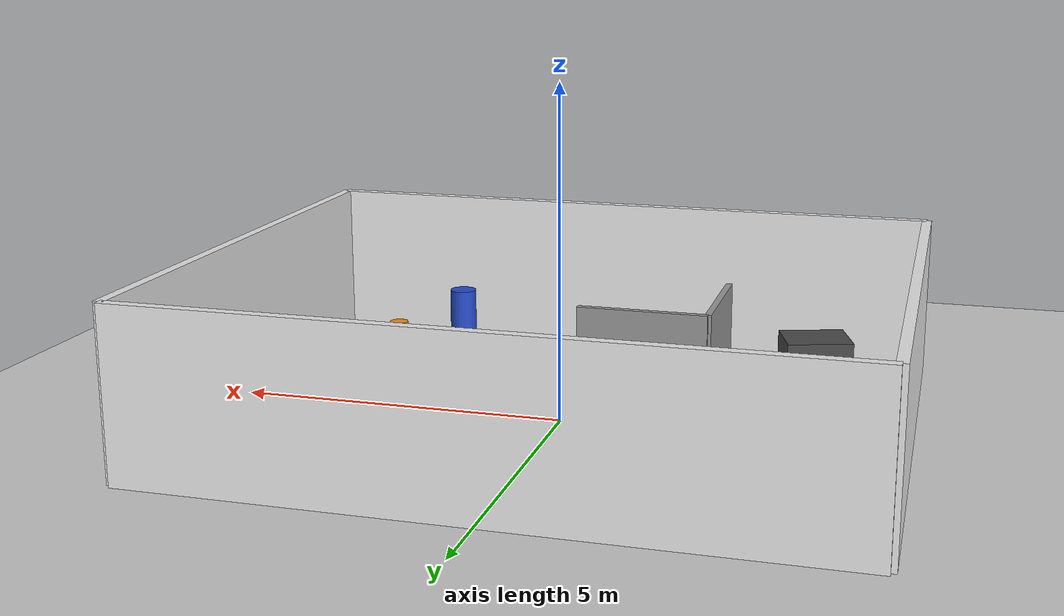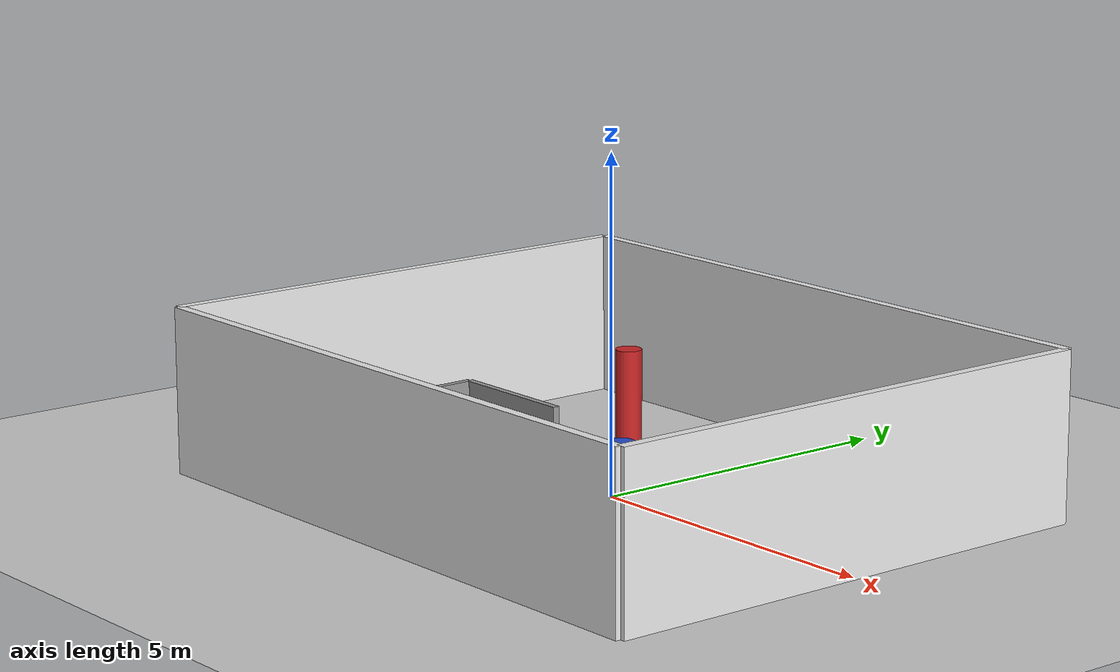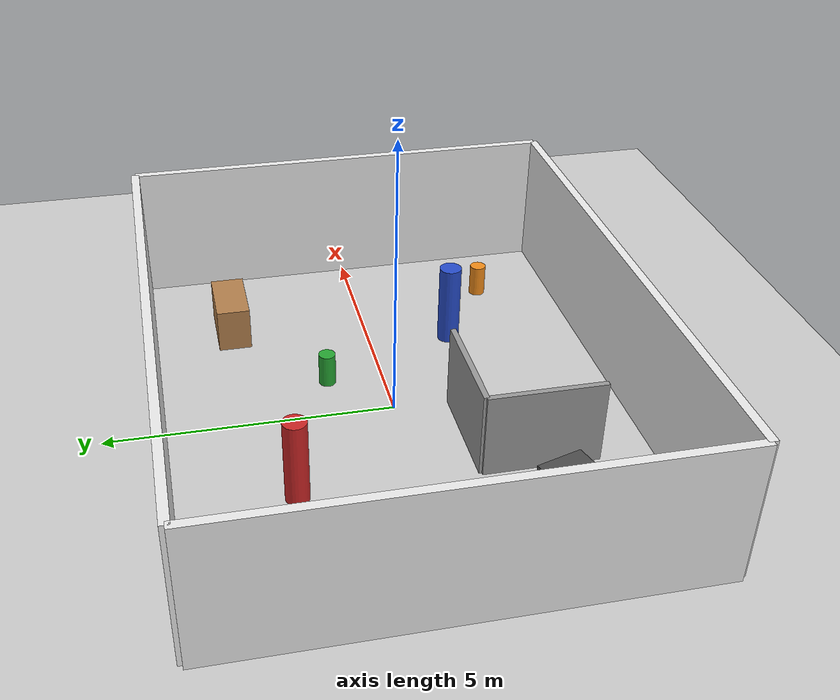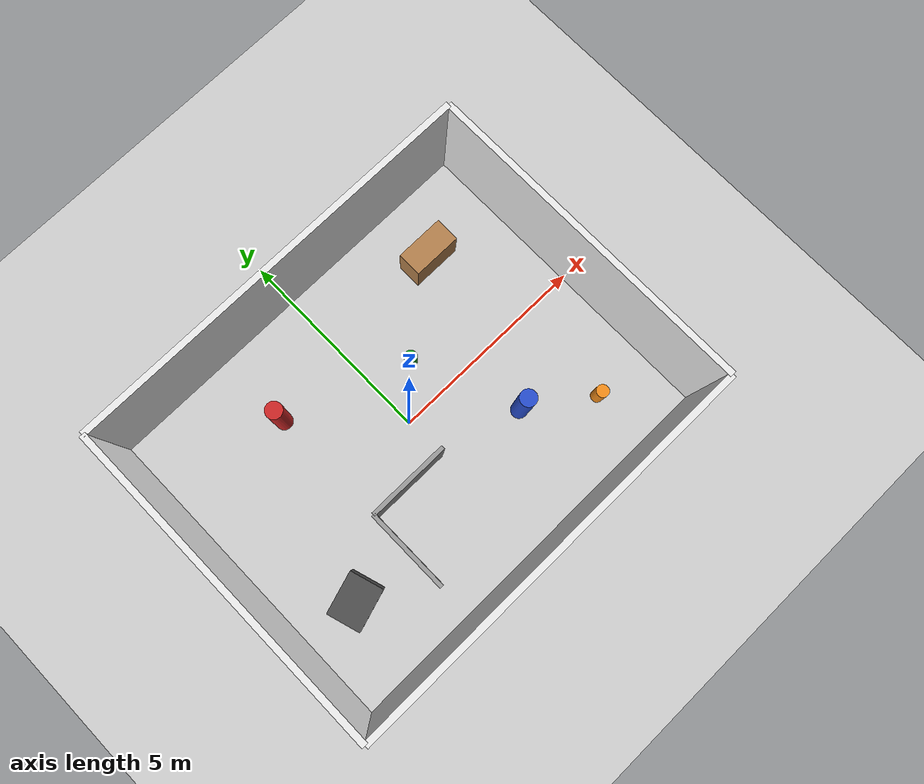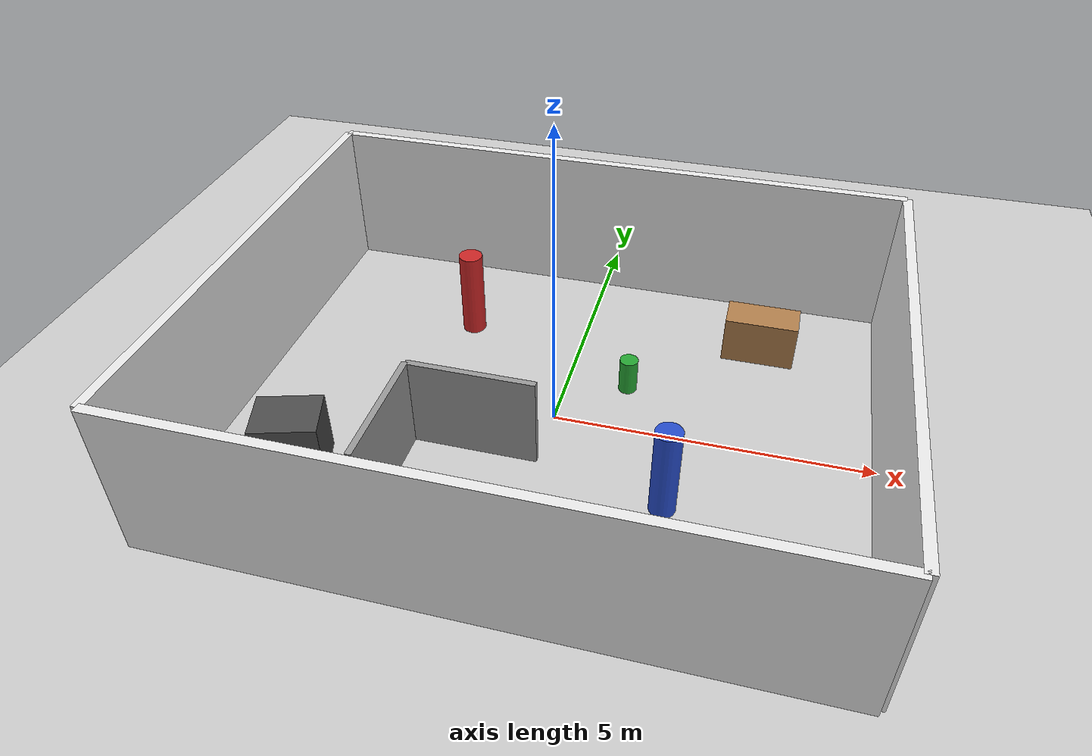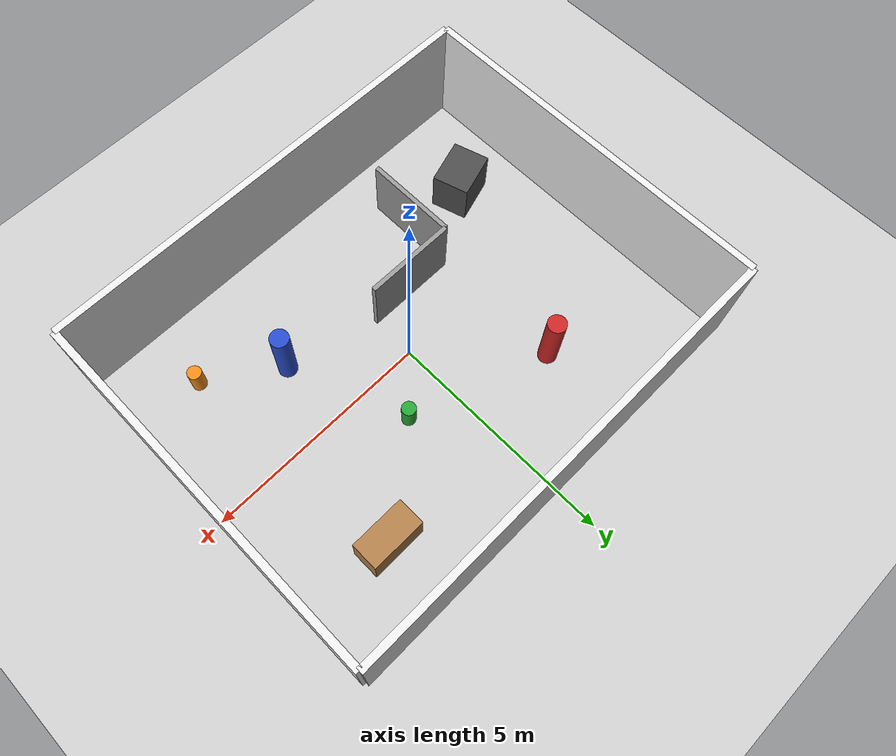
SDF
<sdf version='1.6'>
  <world name='default'>
    <light name='sun' type='directional'>
      <cast_shadows>1</cast_shadows>
      <pose frame=''>0 0 10 0 -0 0</pose>
      <diffuse>0.8 0.8 0.8 1</diffuse>
      <specular>0.1 0.1 0.1 1</specular>
      <attenuation>
        <range>1000</range>
        <constant>0.9</constant>
        <linear>0.01</linear>
        <quadratic>0.001</quadratic>
      </attenuation>
      <direction>-0.5 0.5 -1</direction>
    </light>

    <!-- Ground plane -->
    <model name='ground_plane'>
      <static>1</static>
      <link name='link'>
        <collision name='collision'>
          <geometry>
            <plane>
              <normal>0 0 1</normal>
              <size>100 100</size>
            </plane>
          </geometry>
          <surface>
            <friction>
              <ode>
                <mu>100</mu>
                <mu2>50</mu2>
              </ode>
            </friction>
          </surface>
        </collision>
        <visual name='visual'>
          <cast_shadows>0</cast_shadows>
          <geometry>
            <plane>
              <normal>0 0 1</normal>
              <size>100 100</size>
            </plane>
          </geometry>
          <material>
            <script>
              <uri>file://media/materials/scripts/gazebo.material</uri>
              <name>Gazebo/Grey</name>
            </script>
          </material>
        </visual>
      </link>
    </model>

    <!-- ===== Room: 10m x 8m, walls 2.5m high ===== -->

    <!-- Wall North (along X, at Y=4) -->
    <model name='wall_north'>
      <static>1</static>
      <pose>0 4 1.25 0 0 0</pose>
      <link name='link'>
        <collision name='collision'>
          <geometry><box><size>10 0.15 2.5</size></box></geometry>
        </collision>
        <visual name='visual'>
          <geometry><box><size>10 0.15 2.5</size></box></geometry>
          <material><script><uri>file://media/materials/scripts/gazebo.material</uri><name>Gazebo/White</name></script></material>
        </visual>
      </link>
    </model>

    <!-- Wall South (along X, at Y=-4) -->
    <model name='wall_south'>
      <static>1</static>
      <pose>0 -4 1.25 0 0 0</pose>
      <link name='link'>
        <collision name='collision'>
          <geometry><box><size>10 0.15 2.5</size></box></geometry>
        </collision>
        <visual name='visual'>
          <geometry><box><size>10 0.15 2.5</size></box></geometry>
          <material><script><uri>file://media/materials/scripts/gazebo.material</uri><name>Gazebo/White</name></script></material>
        </visual>
      </link>
    </model>

    <!-- Wall West (along Y, at X=-5) -->
    <model name='wall_west'>
      <static>1</static>
      <pose>-5 0 1.25 0 0 0</pose>
      <link name='link'>
        <collision name='collision'>
          <geometry><box><size>0.15 8 2.5</size></box></geometry>
        </collision>
        <visual name='visual'>
          <geometry><box><size>0.15 8 2.5</size></box></geometry>
          <material><script><uri>file://media/materials/scripts/gazebo.material</uri><name>Gazebo/White</name></script></material>
        </visual>
      </link>
    </model>

    <!-- Wall East (along Y, at X=5) -->
    <model name='wall_east'>
      <static>1</static>
      <pose>5 0 1.25 0 0 0</pose>
      <link name='link'>
        <collision name='collision'>
          <geometry><box><size>0.15 8 2.5</size></box></geometry>
        </collision>
        <visual name='visual'>
          <geometry><box><size>0.15 8 2.5</size></box></geometry>
          <material><script><uri>file://media/materials/scripts/gazebo.material</uri><name>Gazebo/White</name></script></material>
        </visual>
      </link>
    </model>

    <!-- ===== Interior obstacles for LiDAR features ===== -->

    <!-- Pillar 1 -->
    <model name='pillar_1'>
      <static>1</static>
      <pose>-2 2 0.75 0 0 0</pose>
      <link name='link'>
        <collision name='collision'>
          <geometry><cylinder><radius>0.2</radius><length>1.5</length></cylinder></geometry>
        </collision>
        <visual name='visual'>
          <geometry><cylinder><radius>0.2</radius><length>1.5</length></cylinder></geometry>
          <material><script><uri>file://media/materials/scripts/gazebo.material</uri><name>Gazebo/Red</name></script></material>
        </visual>
      </link>
    </model>

    <!-- Pillar 2 -->
    <model name='pillar_2'>
      <static>1</static>
      <pose>2 -1.5 0.75 0 0 0</pose>
      <link name='link'>
        <collision name='collision'>
          <geometry><cylinder><radius>0.2</radius><length>1.5</length></cylinder></geometry>
        </collision>
        <visual name='visual'>
          <geometry><cylinder><radius>0.2</radius><length>1.5</length></cylinder></geometry>
          <material><script><uri>file://media/materials/scripts/gazebo.material</uri><name>Gazebo/Blue</name></script></material>
        </visual>
      </link>
    </model>

    <!-- Box obstacle (table-like) -->
    <model name='box_1'>
      <static>1</static>
      <pose>3 2.5 0.4 0 0 0</pose>
      <link name='link'>
        <collision name='collision'>
          <geometry><box><size>1.2 0.6 0.8</size></box></geometry>
        </collision>
        <visual name='visual'>
          <geometry><box><size>1.2 0.6 0.8</size></box></geometry>
          <material><script><uri>file://media/materials/scripts/gazebo.material</uri><name>Gazebo/Wood</name></script></material>
        </visual>
      </link>
    </model>

    <!-- Box obstacle 2 -->
    <model name='box_2'>
      <static>1</static>
      <pose>-3.5 -2 0.5 0 0 0.3</pose>
      <link name='link'>
        <collision name='collision'>
          <geometry><box><size>1.0 0.8 1.0</size></box></geometry>
        </collision>
        <visual name='visual'>
          <geometry><box><size>1.0 0.8 1.0</size></box></geometry>
          <material><script><uri>file://media/materials/scripts/gazebo.material</uri><name>Gazebo/DarkGrey</name></script></material>
        </visual>
      </link>
    </model>

    <!-- L-shaped partition wall -->
    <model name='partition_1'>
      <static>1</static>
      <pose>-1 -1 0.75 0 0 0</pose>
      <link name='link'>
        <collision name='collision'>
          <geometry><box><size>2.0 0.1 1.5</size></box></geometry>
        </collision>
        <visual name='visual'>
          <geometry><box><size>2.0 0.1 1.5</size></box></geometry>
          <material><script><uri>file://media/materials/scripts/gazebo.material</uri><name>Gazebo/Grey</name></script></material>
        </visual>
      </link>
    </model>
    <model name='partition_2'>
      <static>1</static>
      <pose>-2 -2 0.75 0 0 1.5708</pose>
      <link name='link'>
        <collision name='collision'>
          <geometry><box><size>2.0 0.1 1.5</size></box></geometry>
        </collision>
        <visual name='visual'>
          <geometry><box><size>2.0 0.1 1.5</size></box></geometry>
          <material><script><uri>file://media/materials/scripts/gazebo.material</uri><name>Gazebo/Grey</name></script></material>
        </visual>
      </link>
    </model>

    <!-- Small cylinder obstacles (like trash cans) -->
    <model name='cylinder_1'>
      <static>1</static>
      <pose>1 1 0.3 0 0 0</pose>
      <link name='link'>
        <collision name='collision'>
          <geometry><cylinder><radius>0.15</radius><length>0.6</length></cylinder></geometry>
        </collision>
        <visual name='visual'>
          <geometry><cylinder><radius>0.15</radius><length>0.6</length></cylinder></geometry>
          <material><script><uri>file://media/materials/scripts/gazebo.material</uri><name>Gazebo/Green</name></script></material>
        </visual>
      </link>
    </model>

    <model name='cylinder_2'>
      <static>1</static>
      <pose>3.5 -2.5 0.3 0 0 0</pose>
      <link name='link'>
        <collision name='collision'>
          <geometry><cylinder><radius>0.15</radius><length>0.6</length></cylinder></geometry>
        </collision>
        <visual name='visual'>
          <geometry><cylinder><radius>0.15</radius><length>0.6</length></cylinder></geometry>
          <material><script><uri>file://media/materials/scripts/gazebo.material</uri><name>Gazebo/Orange</name></script></material>
        </visual>
      </link>
    </model>

    <!-- Physics -->
    <gravity>0 0 -9.8</gravity>
    <magnetic_field>6e-06 2.3e-05 -4.2e-05</magnetic_field>
    <atmosphere type='adiabatic'/>
    <physics name='default_physics' default='0' type='ode'>
      <max_step_size>0.001</max_step_size>
      <real_time_factor>1</real_time_factor>
      <real_time_update_rate>1000</real_time_update_rate>
    </physics>
    <scene>
      <ambient>0.4 0.4 0.4 1</ambient>
      <background>0.7 0.7 0.7 1</background>
      <shadows>1</shadows>
    </scene>
  </world>
</sdf>
